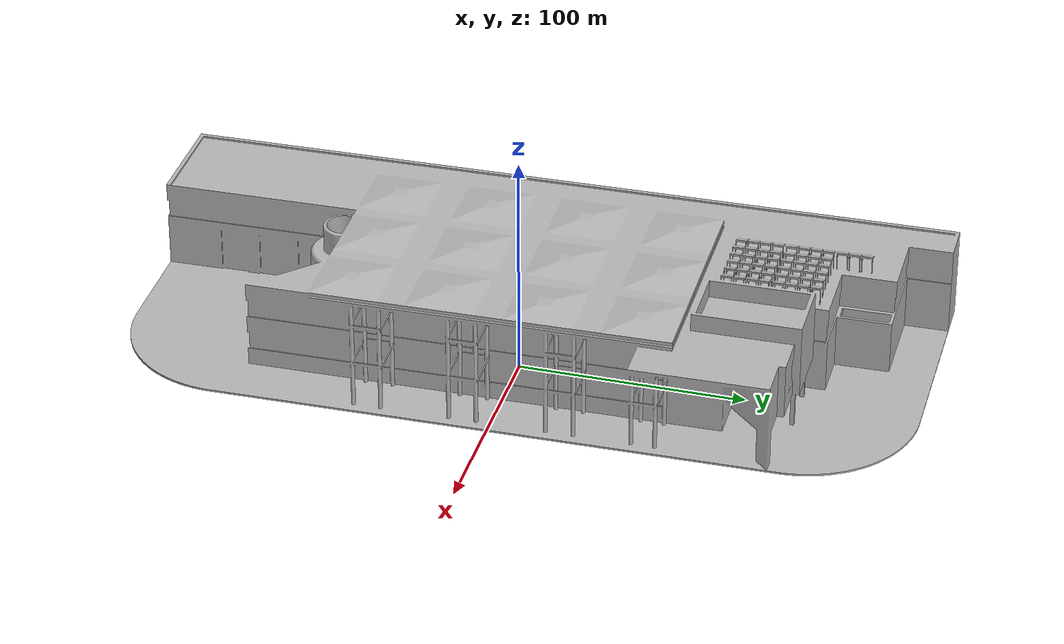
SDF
<?xml version='1.0'?>
<sdf version='1.7'>
  <model name='airport'>
    <static>true</static>
    <link name='link_0'>
      <inertial>
        <mass>1</mass>
        <inertia>
          <ixx>0.166667</ixx>
          <ixy>0</ixy>
          <ixz>0</ixz>
          <iyy>0.166667</iyy>
          <iyz>0</iyz>
          <izz>0.166667</izz>
        </inertia>
        <pose>0 0 0 0 -0 0</pose>
      </inertial>
      <pose>4e-06 1e-06 0 0 -0 1.58504</pose>
      <gravity>1</gravity>
      <self_collide>0</self_collide>
      <kinematic>0</kinematic>
      <enable_wind>0</enable_wind>
      <visual name='visual'>
        <pose>0 0 0 0 -0 0</pose>
        <geometry>
          <mesh>
            <uri>/home/leejeonghun/model_editor_models/airport/scripts/airport.dae</uri>
            <scale>0.6 0.6 0.8</scale>
          </mesh>
        </geometry>
        <material>
          <lighting>1</lighting>
          <script>
            <uri>/home/leejeonghun/model_editor_models/airport/scripts/airporrt.jpg</uri>
          </script>
          <shader type='pixel'>
            <normal_map>__default__</normal_map>
          </shader>
        </material>
        <transparency>0</transparency>
        <cast_shadows>1</cast_shadows>
      </visual>
      <collision name='collision'>
        <laser_retro>0</laser_retro>
        <max_contacts>10</max_contacts>
        <pose>0 0 0 0 -0 0</pose>
        <geometry>
          <mesh>
            <uri>/home/leejeonghun/model_editor_models/airport/scripts/airport.dae</uri>
            <scale>0.6 0.6 0.8</scale>
          </mesh>
        </geometry>
        <surface>
          <friction>
            <ode>
              <mu>1</mu>
              <mu2>1</mu2>
              <fdir1>0 0 0</fdir1>
              <slip1>0</slip1>
              <slip2>0</slip2>
            </ode>
            <torsional>
              <coefficient>1</coefficient>
              <patch_radius>0</patch_radius>
              <surface_radius>0</surface_radius>
              <use_patch_radius>1</use_patch_radius>
              <ode>
                <slip>0</slip>
              </ode>
            </torsional>
          </friction>
          <bounce>
            <restitution_coefficient>0</restitution_coefficient>
            <threshold>1e+06</threshold>
          </bounce>
          <contact>
            <collide_without_contact>0</collide_without_contact>
            <collide_without_contact_bitmask>1</collide_without_contact_bitmask>
            <collide_bitmask>1</collide_bitmask>
            <ode>
              <soft_cfm>0</soft_cfm>
              <soft_erp>0.2</soft_erp>
              <kp>1e+13</kp>
              <kd>1</kd>
              <max_vel>0.01</max_vel>
              <min_depth>0</min_depth>
            </ode>
            <bullet>
              <split_impulse>1</split_impulse>
              <split_impulse_penetration_threshold>-0.01</split_impulse_penetration_threshold>
              <soft_cfm>0</soft_cfm>
              <soft_erp>0.2</soft_erp>
              <kp>1e+13</kp>
              <kd>1</kd>
            </bullet>
          </contact>
        </surface>
      </collision>
    </link>
    <static>0</static>
    <allow_auto_disable>1</allow_auto_disable>
  </model>
</sdf>
